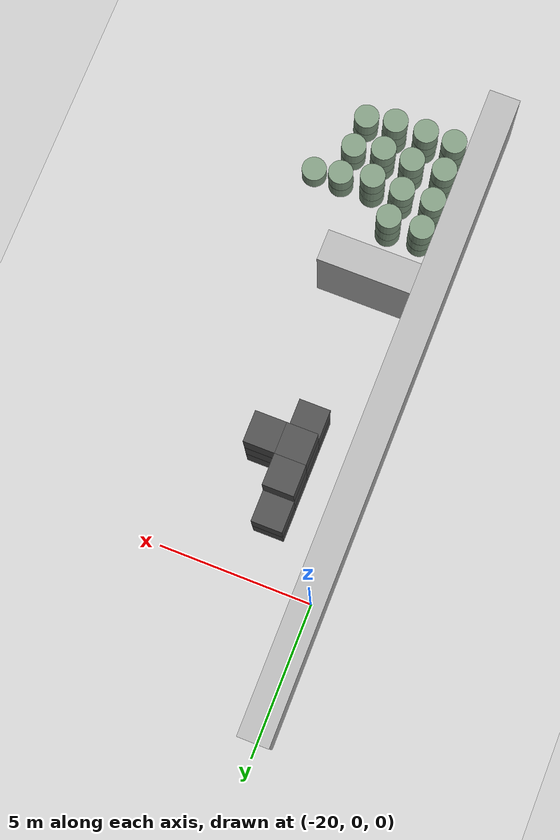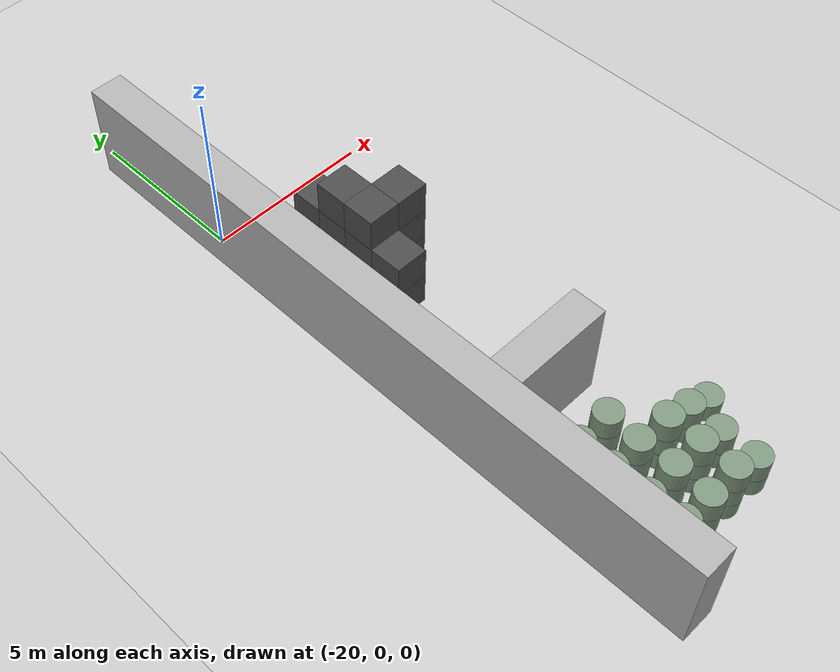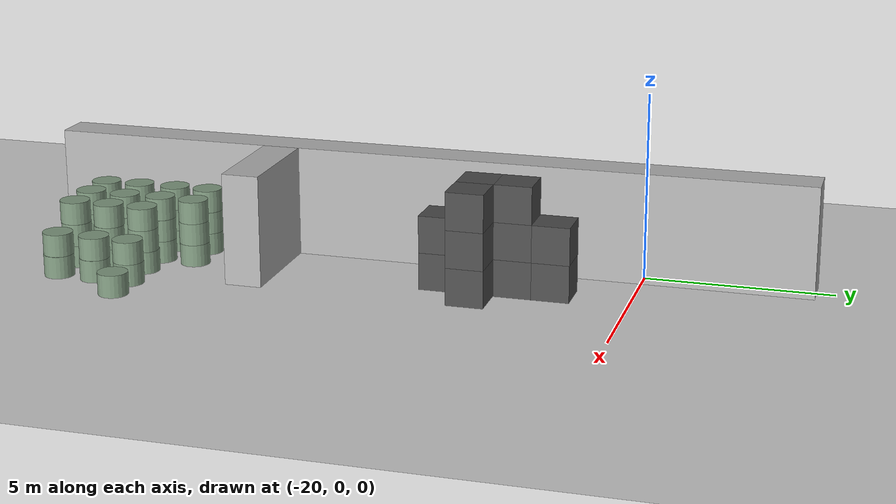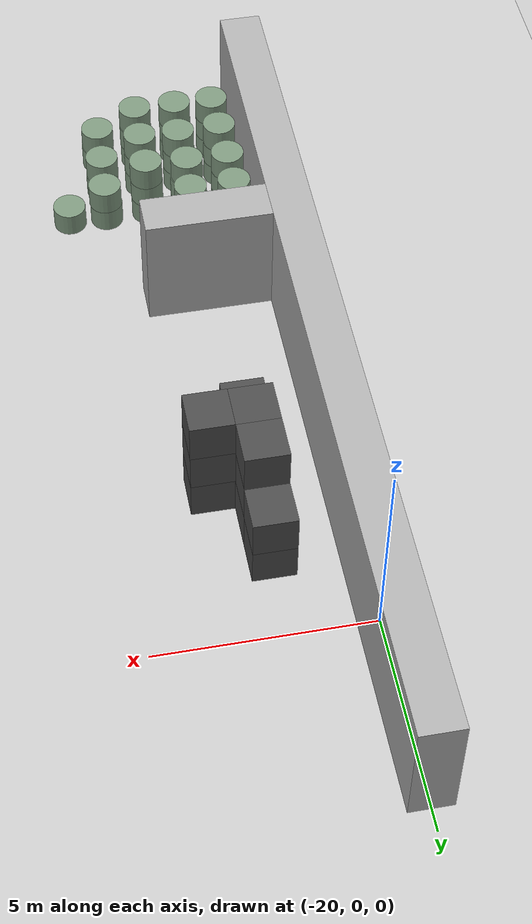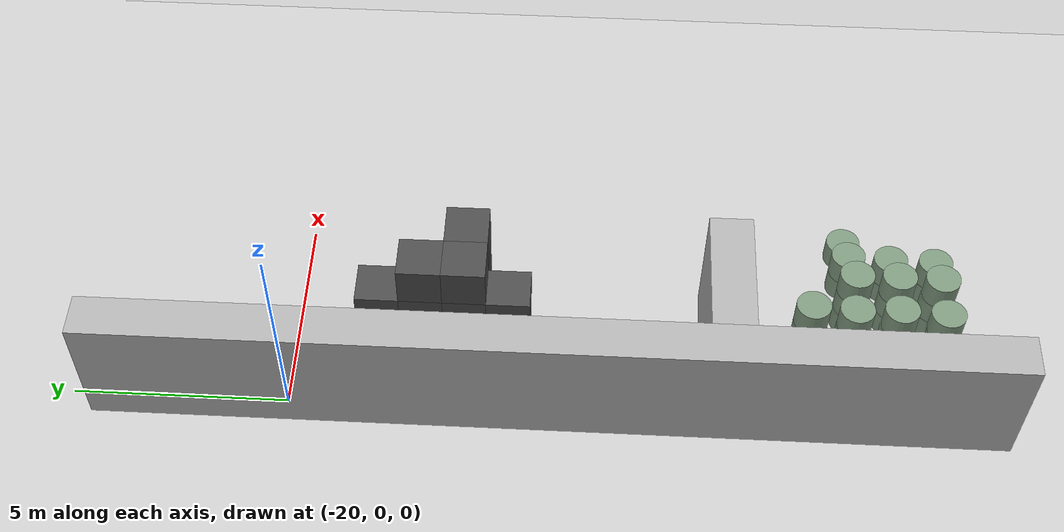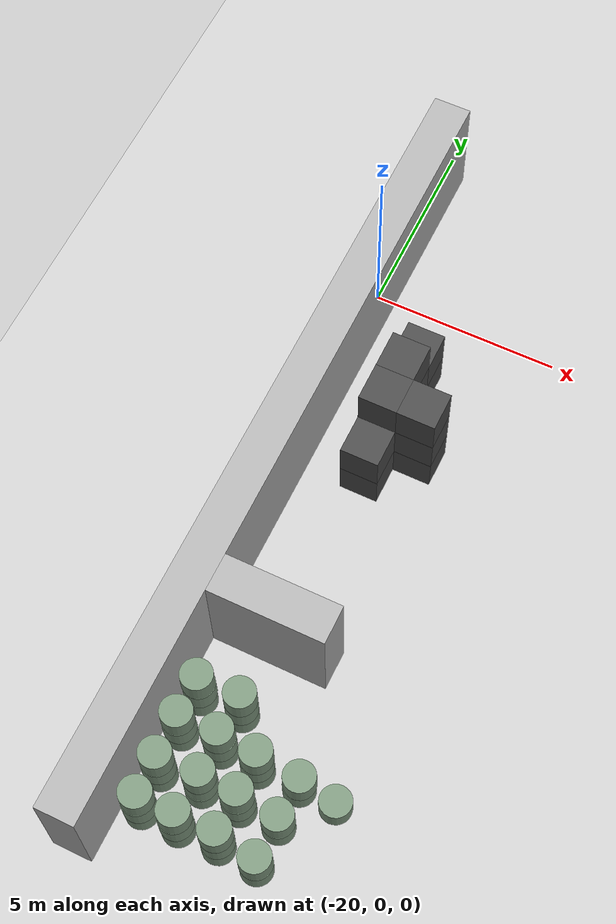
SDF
<sdf version="1.6">
 <world name="default">
  <include><uri>model://ground_plane</uri></include>
  <model name="wall_0">
   <pose>-20.0 -6.0 1.5 0 -0 0</pose>
   <static>True</static>
   <link name="link">
    <inertial>
     <mass>100</mass>
     <inertia>
      <ixx>0.166667</ixx>
      <ixy>0</ixy>
      <ixz>0</ixz>
      <iyy>0.166667</iyy>
      <iyz>0</iyz>
      <izz>0.166667</izz>
     </inertia>
    </inertial>
    <collision name="collision"><geometry><box><size>1.0 21.0 3.0</size></box></geometry></collision>
    <visual name="visual">
     <geometry><box><size>1.0 21.0 3.0</size></box></geometry>
     <material><ambient>0.7 0.7 0.7 1</ambient><diffuse>0.7 0.7 0.7 1</diffuse></material>
    </visual>
   </link>
  </model>
  <model name="wall_7">
   <pose>-18.0 -10.0 1.5 0 -0 0</pose>
   <static>True</static>
   <link name="link">
    <inertial>
     <mass>100</mass>
     <inertia>
      <ixx>0.166667</ixx>
      <ixy>0</ixy>
      <ixz>0</ixz>
      <iyy>0.166667</iyy>
      <iyz>0</iyz>
      <izz>0.166667</izz>
     </inertia>
    </inertial>
    <collision name="collision"><geometry><box><size>3.0 1.0 3.0</size></box></geometry></collision>
    <visual name="visual">
     <geometry><box><size>3.0 1.0 3.0</size></box></geometry>
     <material><ambient>0.7 0.7 0.7 1</ambient><diffuse>0.7 0.7 0.7 1</diffuse></material>
    </visual>
   </link>
  </model>
  <model name="unit_box_0">
   <pose>-18.0 -5.0 0.5 0 -0 0</pose>
   <static>True</static>
   <link name="link">
    <inertial>
     <mass>100</mass>
     <inertia>
      <ixx>0.166667</ixx>
      <ixy>0</ixy>
      <ixz>0</ixz>
      <iyy>0.166667</iyy>
      <iyz>0</iyz>
      <izz>0.166667</izz>
     </inertia>
    </inertial>
    <collision name="collision"><geometry><box><size>1.0 1.0 1.0</size></box></geometry></collision>
    <visual name="visual">
     <geometry><box><size>1.0 1.0 1.0</size></box></geometry>
     <material><ambient>0.3 0.3 0.3 1</ambient><diffuse>0.3 0.3 0.3 1</diffuse></material>
    </visual>
   </link>
  </model>
  <model name="unit_box_1">
   <pose>-18.0 -5.0 1.5 0 -0 0</pose>
   <static>True</static>
   <link name="link">
    <inertial>
     <mass>100</mass>
     <inertia>
      <ixx>0.166667</ixx>
      <ixy>0</ixy>
      <ixz>0</ixz>
      <iyy>0.166667</iyy>
      <iyz>0</iyz>
      <izz>0.166667</izz>
     </inertia>
    </inertial>
    <collision name="collision"><geometry><box><size>1.0 1.0 1.0</size></box></geometry></collision>
    <visual name="visual">
     <geometry><box><size>1.0 1.0 1.0</size></box></geometry>
     <material><ambient>0.3 0.3 0.3 1</ambient><diffuse>0.3 0.3 0.3 1</diffuse></material>
    </visual>
   </link>
  </model>
  <model name="unit_box_2">
   <pose>-18.0 -4.0 0.5 0 -0 0</pose>
   <static>True</static>
   <link name="link">
    <inertial>
     <mass>100</mass>
     <inertia>
      <ixx>0.166667</ixx>
      <ixy>0</ixy>
      <ixz>0</ixz>
      <iyy>0.166667</iyy>
      <iyz>0</iyz>
      <izz>0.166667</izz>
     </inertia>
    </inertial>
    <collision name="collision"><geometry><box><size>1.0 1.0 1.0</size></box></geometry></collision>
    <visual name="visual">
     <geometry><box><size>1.0 1.0 1.0</size></box></geometry>
     <material><ambient>0.3 0.3 0.3 1</ambient><diffuse>0.3 0.3 0.3 1</diffuse></material>
    </visual>
   </link>
  </model>
  <model name="unit_box_3">
   <pose>-18.0 -4.0 1.5 0 -0 0</pose>
   <static>True</static>
   <link name="link">
    <inertial>
     <mass>100</mass>
     <inertia>
      <ixx>0.166667</ixx>
      <ixy>0</ixy>
      <ixz>0</ixz>
      <iyy>0.166667</iyy>
      <iyz>0</iyz>
      <izz>0.166667</izz>
     </inertia>
    </inertial>
    <collision name="collision"><geometry><box><size>1.0 1.0 1.0</size></box></geometry></collision>
    <visual name="visual">
     <geometry><box><size>1.0 1.0 1.0</size></box></geometry>
     <material><ambient>0.3 0.3 0.3 1</ambient><diffuse>0.3 0.3 0.3 1</diffuse></material>
    </visual>
   </link>
  </model>
  <model name="unit_box_4">
   <pose>-18.0 -4.0 2.5 0 -0 0</pose>
   <static>True</static>
   <link name="link">
    <inertial>
     <mass>100</mass>
     <inertia>
      <ixx>0.166667</ixx>
      <ixy>0</ixy>
      <ixz>0</ixz>
      <iyy>0.166667</iyy>
      <iyz>0</iyz>
      <izz>0.166667</izz>
     </inertia>
    </inertial>
    <collision name="collision"><geometry><box><size>1.0 1.0 1.0</size></box></geometry></collision>
    <visual name="visual">
     <geometry><box><size>1.0 1.0 1.0</size></box></geometry>
     <material><ambient>0.3 0.3 0.3 1</ambient><diffuse>0.3 0.3 0.3 1</diffuse></material>
    </visual>
   </link>
  </model>
  <model name="unit_box_5">
   <pose>-18.0 -3.0 0.5 0 -0 0</pose>
   <static>True</static>
   <link name="link">
    <inertial>
     <mass>100</mass>
     <inertia>
      <ixx>0.166667</ixx>
      <ixy>0</ixy>
      <ixz>0</ixz>
      <iyy>0.166667</iyy>
      <iyz>0</iyz>
      <izz>0.166667</izz>
     </inertia>
    </inertial>
    <collision name="collision"><geometry><box><size>1.0 1.0 1.0</size></box></geometry></collision>
    <visual name="visual">
     <geometry><box><size>1.0 1.0 1.0</size></box></geometry>
     <material><ambient>0.3 0.3 0.3 1</ambient><diffuse>0.3 0.3 0.3 1</diffuse></material>
    </visual>
   </link>
  </model>
  <model name="unit_box_6">
   <pose>-18.0 -3.0 1.5 0 -0 0</pose>
   <static>True</static>
   <link name="link">
    <inertial>
     <mass>100</mass>
     <inertia>
      <ixx>0.166667</ixx>
      <ixy>0</ixy>
      <ixz>0</ixz>
      <iyy>0.166667</iyy>
      <iyz>0</iyz>
      <izz>0.166667</izz>
     </inertia>
    </inertial>
    <collision name="collision"><geometry><box><size>1.0 1.0 1.0</size></box></geometry></collision>
    <visual name="visual">
     <geometry><box><size>1.0 1.0 1.0</size></box></geometry>
     <material><ambient>0.3 0.3 0.3 1</ambient><diffuse>0.3 0.3 0.3 1</diffuse></material>
    </visual>
   </link>
  </model>
  <model name="unit_box_7">
   <pose>-18.0 -3.0 2.5 0 -0 0</pose>
   <static>True</static>
   <link name="link">
    <inertial>
     <mass>100</mass>
     <inertia>
      <ixx>0.166667</ixx>
      <ixy>0</ixy>
      <ixz>0</ixz>
      <iyy>0.166667</iyy>
      <iyz>0</iyz>
      <izz>0.166667</izz>
     </inertia>
    </inertial>
    <collision name="collision"><geometry><box><size>1.0 1.0 1.0</size></box></geometry></collision>
    <visual name="visual">
     <geometry><box><size>1.0 1.0 1.0</size></box></geometry>
     <material><ambient>0.3 0.3 0.3 1</ambient><diffuse>0.3 0.3 0.3 1</diffuse></material>
    </visual>
   </link>
  </model>
  <model name="unit_box_8">
   <pose>-18.0 -2.0 0.5 0 -0 0</pose>
   <static>True</static>
   <link name="link">
    <inertial>
     <mass>100</mass>
     <inertia>
      <ixx>0.166667</ixx>
      <ixy>0</ixy>
      <ixz>0</ixz>
      <iyy>0.166667</iyy>
      <iyz>0</iyz>
      <izz>0.166667</izz>
     </inertia>
    </inertial>
    <collision name="collision"><geometry><box><size>1.0 1.0 1.0</size></box></geometry></collision>
    <visual name="visual">
     <geometry><box><size>1.0 1.0 1.0</size></box></geometry>
     <material><ambient>0.3 0.3 0.3 1</ambient><diffuse>0.3 0.3 0.3 1</diffuse></material>
    </visual>
   </link>
  </model>
  <model name="unit_box_9">
   <pose>-18.0 -2.0 1.5 0 -0 0</pose>
   <static>True</static>
   <link name="link">
    <inertial>
     <mass>100</mass>
     <inertia>
      <ixx>0.166667</ixx>
      <ixy>0</ixy>
      <ixz>0</ixz>
      <iyy>0.166667</iyy>
      <iyz>0</iyz>
      <izz>0.166667</izz>
     </inertia>
    </inertial>
    <collision name="collision"><geometry><box><size>1.0 1.0 1.0</size></box></geometry></collision>
    <visual name="visual">
     <geometry><box><size>1.0 1.0 1.0</size></box></geometry>
     <material><ambient>0.3 0.3 0.3 1</ambient><diffuse>0.3 0.3 0.3 1</diffuse></material>
    </visual>
   </link>
  </model>
  <model name="unit_box_17">
   <pose>-17.0 -4.0 0.5 0 -0 0</pose>
   <static>True</static>
   <link name="link">
    <inertial>
     <mass>100</mass>
     <inertia>
      <ixx>0.166667</ixx>
      <ixy>0</ixy>
      <ixz>0</ixz>
      <iyy>0.166667</iyy>
      <iyz>0</iyz>
      <izz>0.166667</izz>
     </inertia>
    </inertial>
    <collision name="collision"><geometry><box><size>1.0 1.0 1.0</size></box></geometry></collision>
    <visual name="visual">
     <geometry><box><size>1.0 1.0 1.0</size></box></geometry>
     <material><ambient>0.3 0.3 0.3 1</ambient><diffuse>0.3 0.3 0.3 1</diffuse></material>
    </visual>
   </link>
  </model>
  <model name="unit_box_18">
   <pose>-17.0 -4.0 1.5 0 -0 0</pose>
   <static>True</static>
   <link name="link">
    <inertial>
     <mass>100</mass>
     <inertia>
      <ixx>0.166667</ixx>
      <ixy>0</ixy>
      <ixz>0</ixz>
      <iyy>0.166667</iyy>
      <iyz>0</iyz>
      <izz>0.166667</izz>
     </inertia>
    </inertial>
    <collision name="collision"><geometry><box><size>1.0 1.0 1.0</size></box></geometry></collision>
    <visual name="visual">
     <geometry><box><size>1.0 1.0 1.0</size></box></geometry>
     <material><ambient>0.3 0.3 0.3 1</ambient><diffuse>0.3 0.3 0.3 1</diffuse></material>
    </visual>
   </link>
  </model>
  <model name="unit_box_19">
   <pose>-17.0 -4.0 2.5 0 -0 0</pose>
   <static>True</static>
   <link name="link">
    <inertial>
     <mass>100</mass>
     <inertia>
      <ixx>0.166667</ixx>
      <ixy>0</ixy>
      <ixz>0</ixz>
      <iyy>0.166667</iyy>
      <iyz>0</iyz>
      <izz>0.166667</izz>
     </inertia>
    </inertial>
    <collision name="collision"><geometry><box><size>1.0 1.0 1.0</size></box></geometry></collision>
    <visual name="visual">
     <geometry><box><size>1.0 1.0 1.0</size></box></geometry>
     <material><ambient>0.3 0.3 0.3 1</ambient><diffuse>0.3 0.3 0.3 1</diffuse></material>
    </visual>
   </link>
  </model>
  <model name="unit_cylinder_0">
   <pose>-18.9976936055 -15.0173820122 0.3 0 -0 0</pose>
   <static>True</static>
   <link name="link">
    <inertial>
     <mass>100</mass>
     <inertia><ixx>0.145833</ixx><ixy>0</ixy><ixz>0</ixz><iyy>0.145833</iyy><iyz>0</iyz><izz>0.125</izz></inertia>
    </inertial>
    <collision name="collision">
     <geometry><cylinder><radius>0.4</radius><length>0.6</length></cylinder></geometry>
     <max_contacts>100</max_contacts>
    </collision>
    <visual name="visual">
     <geometry><cylinder><radius>0.4</radius><length>0.6</length></cylinder></geometry>
     <material><ambient>0.5 0.6 0.5 1</ambient><diffuse>0.5 0.6 0.5 1</diffuse></material>
    </visual>
   </link>
  </model>
  <model name="unit_cylinder_1">
   <pose>-18.9972618834 -15.027871023 0.9 0 -0 0</pose>
   <static>True</static>
   <link name="link">
    <inertial>
     <mass>100</mass>
     <inertia><ixx>0.145833</ixx><ixy>0</ixy><ixz>0</ixz><iyy>0.145833</iyy><iyz>0</iyz><izz>0.125</izz></inertia>
    </inertial>
    <collision name="collision">
     <geometry><cylinder><radius>0.4</radius><length>0.6</length></cylinder></geometry>
     <max_contacts>100</max_contacts>
    </collision>
    <visual name="visual">
     <geometry><cylinder><radius>0.4</radius><length>0.6</length></cylinder></geometry>
     <material><ambient>0.5 0.6 0.5 1</ambient><diffuse>0.5 0.6 0.5 1</diffuse></material>
    </visual>
   </link>
  </model>
  <model name="unit_cylinder_2">
   <pose>-18.9904668573 -15.0149929432 1.5 0 -0 0</pose>
   <static>True</static>
   <link name="link">
    <inertial>
     <mass>100</mass>
     <inertia><ixx>0.145833</ixx><ixy>0</ixy><ixz>0</ixz><iyy>0.145833</iyy><iyz>0</iyz><izz>0.125</izz></inertia>
    </inertial>
    <collision name="collision">
     <geometry><cylinder><radius>0.4</radius><length>0.6</length></cylinder></geometry>
     <max_contacts>100</max_contacts>
    </collision>
    <visual name="visual">
     <geometry><cylinder><radius>0.4</radius><length>0.6</length></cylinder></geometry>
     <material><ambient>0.5 0.6 0.5 1</ambient><diffuse>0.5 0.6 0.5 1</diffuse></material>
    </visual>
   </link>
  </model>
  <model name="unit_cylinder_3">
   <pose>-19.0211402646 -14.0417161583 0.3 0 -0 0</pose>
   <static>True</static>
   <link name="link">
    <inertial>
     <mass>100</mass>
     <inertia><ixx>0.145833</ixx><ixy>0</ixy><ixz>0</ixz><iyy>0.145833</iyy><iyz>0</iyz><izz>0.125</izz></inertia>
    </inertial>
    <collision name="collision">
     <geometry><cylinder><radius>0.4</radius><length>0.6</length></cylinder></geometry>
     <max_contacts>100</max_contacts>
    </collision>
    <visual name="visual">
     <geometry><cylinder><radius>0.4</radius><length>0.6</length></cylinder></geometry>
     <material><ambient>0.5 0.6 0.5 1</ambient><diffuse>0.5 0.6 0.5 1</diffuse></material>
    </visual>
   </link>
  </model>
  <model name="unit_cylinder_4">
   <pose>-19.0202628345 -14.0444929407 0.9 0 -0 0</pose>
   <static>True</static>
   <link name="link">
    <inertial>
     <mass>100</mass>
     <inertia><ixx>0.145833</ixx><ixy>0</ixy><ixz>0</ixz><iyy>0.145833</iyy><iyz>0</iyz><izz>0.125</izz></inertia>
    </inertial>
    <collision name="collision">
     <geometry><cylinder><radius>0.4</radius><length>0.6</length></cylinder></geometry>
     <max_contacts>100</max_contacts>
    </collision>
    <visual name="visual">
     <geometry><cylinder><radius>0.4</radius><length>0.6</length></cylinder></geometry>
     <material><ambient>0.5 0.6 0.5 1</ambient><diffuse>0.5 0.6 0.5 1</diffuse></material>
    </visual>
   </link>
  </model>
  <model name="unit_cylinder_5">
   <pose>-19.0223204834 -14.0344941142 1.5 0 -0 0</pose>
   <static>True</static>
   <link name="link">
    <inertial>
     <mass>100</mass>
     <inertia><ixx>0.145833</ixx><ixy>0</ixy><ixz>0</ixz><iyy>0.145833</iyy><iyz>0</iyz><izz>0.125</izz></inertia>
    </inertial>
    <collision name="collision">
     <geometry><cylinder><radius>0.4</radius><length>0.6</length></cylinder></geometry>
     <max_contacts>100</max_contacts>
    </collision>
    <visual name="visual">
     <geometry><cylinder><radius>0.4</radius><length>0.6</length></cylinder></geometry>
     <material><ambient>0.5 0.6 0.5 1</ambient><diffuse>0.5 0.6 0.5 1</diffuse></material>
    </visual>
   </link>
  </model>
  <model name="unit_cylinder_6">
   <pose>-19.0405860404 -12.9740119748 0.3 0 -0 0</pose>
   <static>True</static>
   <link name="link">
    <inertial>
     <mass>100</mass>
     <inertia><ixx>0.145833</ixx><ixy>0</ixy><ixz>0</ixz><iyy>0.145833</iyy><iyz>0</iyz><izz>0.125</izz></inertia>
    </inertial>
    <collision name="collision">
     <geometry><cylinder><radius>0.4</radius><length>0.6</length></cylinder></geometry>
     <max_contacts>100</max_contacts>
    </collision>
    <visual name="visual">
     <geometry><cylinder><radius>0.4</radius><length>0.6</length></cylinder></geometry>
     <material><ambient>0.5 0.6 0.5 1</ambient><diffuse>0.5 0.6 0.5 1</diffuse></material>
    </visual>
   </link>
  </model>
  <model name="unit_cylinder_7">
   <pose>-19.0390184208 -12.9880925137 0.9 0 -0 0</pose>
   <static>True</static>
   <link name="link">
    <inertial>
     <mass>100</mass>
     <inertia><ixx>0.145833</ixx><ixy>0</ixy><ixz>0</ixz><iyy>0.145833</iyy><iyz>0</iyz><izz>0.125</izz></inertia>
    </inertial>
    <collision name="collision">
     <geometry><cylinder><radius>0.4</radius><length>0.6</length></cylinder></geometry>
     <max_contacts>100</max_contacts>
    </collision>
    <visual name="visual">
     <geometry><cylinder><radius>0.4</radius><length>0.6</length></cylinder></geometry>
     <material><ambient>0.5 0.6 0.5 1</ambient><diffuse>0.5 0.6 0.5 1</diffuse></material>
    </visual>
   </link>
  </model>
  <model name="unit_cylinder_8">
   <pose>-19.0408702271 -12.9782442455 1.5 0 -0 0</pose>
   <static>True</static>
   <link name="link">
    <inertial>
     <mass>100</mass>
     <inertia><ixx>0.145833</ixx><ixy>0</ixy><ixz>0</ixz><iyy>0.145833</iyy><iyz>0</iyz><izz>0.125</izz></inertia>
    </inertial>
    <collision name="collision">
     <geometry><cylinder><radius>0.4</radius><length>0.6</length></cylinder></geometry>
     <max_contacts>100</max_contacts>
    </collision>
    <visual name="visual">
     <geometry><cylinder><radius>0.4</radius><length>0.6</length></cylinder></geometry>
     <material><ambient>0.5 0.6 0.5 1</ambient><diffuse>0.5 0.6 0.5 1</diffuse></material>
    </visual>
   </link>
  </model>
  <model name="unit_cylinder_9">
   <pose>-19.0255646272 -12.0182648448 0.3 0 -0 0</pose>
   <static>True</static>
   <link name="link">
    <inertial>
     <mass>100</mass>
     <inertia><ixx>0.145833</ixx><ixy>0</ixy><ixz>0</ixz><iyy>0.145833</iyy><iyz>0</iyz><izz>0.125</izz></inertia>
    </inertial>
    <collision name="collision">
     <geometry><cylinder><radius>0.4</radius><length>0.6</length></cylinder></geometry>
     <max_contacts>100</max_contacts>
    </collision>
    <visual name="visual">
     <geometry><cylinder><radius>0.4</radius><length>0.6</length></cylinder></geometry>
     <material><ambient>0.5 0.6 0.5 1</ambient><diffuse>0.5 0.6 0.5 1</diffuse></material>
    </visual>
   </link>
  </model>
  <model name="unit_cylinder_10">
   <pose>-19.016616472 -12.0086940915 0.9 0 -0 0</pose>
   <static>True</static>
   <link name="link">
    <inertial>
     <mass>100</mass>
     <inertia><ixx>0.145833</ixx><ixy>0</ixy><ixz>0</ixz><iyy>0.145833</iyy><iyz>0</iyz><izz>0.125</izz></inertia>
    </inertial>
    <collision name="collision">
     <geometry><cylinder><radius>0.4</radius><length>0.6</length></cylinder></geometry>
     <max_contacts>100</max_contacts>
    </collision>
    <visual name="visual">
     <geometry><cylinder><radius>0.4</radius><length>0.6</length></cylinder></geometry>
     <material><ambient>0.5 0.6 0.5 1</ambient><diffuse>0.5 0.6 0.5 1</diffuse></material>
    </visual>
   </link>
  </model>
  <model name="unit_cylinder_11">
   <pose>-19.0320467182 -12.0079333061 1.5 0 -0 0</pose>
   <static>True</static>
   <link name="link">
    <inertial>
     <mass>100</mass>
     <inertia><ixx>0.145833</ixx><ixy>0</ixy><ixz>0</ixz><iyy>0.145833</iyy><iyz>0</iyz><izz>0.125</izz></inertia>
    </inertial>
    <collision name="collision">
     <geometry><cylinder><radius>0.4</radius><length>0.6</length></cylinder></geometry>
     <max_contacts>100</max_contacts>
    </collision>
    <visual name="visual">
     <geometry><cylinder><radius>0.4</radius><length>0.6</length></cylinder></geometry>
     <material><ambient>0.5 0.6 0.5 1</ambient><diffuse>0.5 0.6 0.5 1</diffuse></material>
    </visual>
   </link>
  </model>
  <model name="unit_cylinder_12">
   <pose>-18.0420736906 -15.0203678666 0.3 0 -0 0</pose>
   <static>True</static>
   <link name="link">
    <inertial>
     <mass>100</mass>
     <inertia><ixx>0.145833</ixx><ixy>0</ixy><ixz>0</ixz><iyy>0.145833</iyy><iyz>0</iyz><izz>0.125</izz></inertia>
    </inertial>
    <collision name="collision">
     <geometry><cylinder><radius>0.4</radius><length>0.6</length></cylinder></geometry>
     <max_contacts>100</max_contacts>
    </collision>
    <visual name="visual">
     <geometry><cylinder><radius>0.4</radius><length>0.6</length></cylinder></geometry>
     <material><ambient>0.5 0.6 0.5 1</ambient><diffuse>0.5 0.6 0.5 1</diffuse></material>
    </visual>
   </link>
  </model>
  <model name="unit_cylinder_13">
   <pose>-18.0505694957 -15.0283172559 0.9 0 -0 0</pose>
   <static>True</static>
   <link name="link">
    <inertial>
     <mass>100</mass>
     <inertia><ixx>0.145833</ixx><ixy>0</ixy><ixz>0</ixz><iyy>0.145833</iyy><iyz>0</iyz><izz>0.125</izz></inertia>
    </inertial>
    <collision name="collision">
     <geometry><cylinder><radius>0.4</radius><length>0.6</length></cylinder></geometry>
     <max_contacts>100</max_contacts>
    </collision>
    <visual name="visual">
     <geometry><cylinder><radius>0.4</radius><length>0.6</length></cylinder></geometry>
     <material><ambient>0.5 0.6 0.5 1</ambient><diffuse>0.5 0.6 0.5 1</diffuse></material>
    </visual>
   </link>
  </model>
  <model name="unit_cylinder_14">
   <pose>-18.0397778592 -15.0171804813 1.5 0 -0 0</pose>
   <static>True</static>
   <link name="link">
    <inertial>
     <mass>100</mass>
     <inertia><ixx>0.145833</ixx><ixy>0</ixy><ixz>0</ixz><iyy>0.145833</iyy><iyz>0</iyz><izz>0.125</izz></inertia>
    </inertial>
    <collision name="collision">
     <geometry><cylinder><radius>0.4</radius><length>0.6</length></cylinder></geometry>
     <max_contacts>100</max_contacts>
    </collision>
    <visual name="visual">
     <geometry><cylinder><radius>0.4</radius><length>0.6</length></cylinder></geometry>
     <material><ambient>0.5 0.6 0.5 1</ambient><diffuse>0.5 0.6 0.5 1</diffuse></material>
    </visual>
   </link>
  </model>
  <model name="unit_cylinder_15">
   <pose>-17.9716567886 -13.9818345061 0.3 0 -0 0</pose>
   <static>True</static>
   <link name="link">
    <inertial>
     <mass>100</mass>
     <inertia><ixx>0.145833</ixx><ixy>0</ixy><ixz>0</ixz><iyy>0.145833</iyy><iyz>0</iyz><izz>0.125</izz></inertia>
    </inertial>
    <collision name="collision">
     <geometry><cylinder><radius>0.4</radius><length>0.6</length></cylinder></geometry>
     <max_contacts>100</max_contacts>
    </collision>
    <visual name="visual">
     <geometry><cylinder><radius>0.4</radius><length>0.6</length></cylinder></geometry>
     <material><ambient>0.5 0.6 0.5 1</ambient><diffuse>0.5 0.6 0.5 1</diffuse></material>
    </visual>
   </link>
  </model>
  <model name="unit_cylinder_16">
   <pose>-17.9717509145 -13.9671241732 0.9 0 -0 0</pose>
   <static>True</static>
   <link name="link">
    <inertial>
     <mass>100</mass>
     <inertia><ixx>0.145833</ixx><ixy>0</ixy><ixz>0</ixz><iyy>0.145833</iyy><iyz>0</iyz><izz>0.125</izz></inertia>
    </inertial>
    <collision name="collision">
     <geometry><cylinder><radius>0.4</radius><length>0.6</length></cylinder></geometry>
     <max_contacts>100</max_contacts>
    </collision>
    <visual name="visual">
     <geometry><cylinder><radius>0.4</radius><length>0.6</length></cylinder></geometry>
     <material><ambient>0.5 0.6 0.5 1</ambient><diffuse>0.5 0.6 0.5 1</diffuse></material>
    </visual>
   </link>
  </model>
  <model name="unit_cylinder_17">
   <pose>-17.9676752597 -13.9786046678 1.5 0 -0 0</pose>
   <static>True</static>
   <link name="link">
    <inertial>
     <mass>100</mass>
     <inertia><ixx>0.145833</ixx><ixy>0</ixy><ixz>0</ixz><iyy>0.145833</iyy><iyz>0</iyz><izz>0.125</izz></inertia>
    </inertial>
    <collision name="collision">
     <geometry><cylinder><radius>0.4</radius><length>0.6</length></cylinder></geometry>
     <max_contacts>100</max_contacts>
    </collision>
    <visual name="visual">
     <geometry><cylinder><radius>0.4</radius><length>0.6</length></cylinder></geometry>
     <material><ambient>0.5 0.6 0.5 1</ambient><diffuse>0.5 0.6 0.5 1</diffuse></material>
    </visual>
   </link>
  </model>
  <model name="unit_cylinder_18">
   <pose>-17.9995596628 -12.9582796081 0.3 0 -0 0</pose>
   <static>True</static>
   <link name="link">
    <inertial>
     <mass>100</mass>
     <inertia><ixx>0.145833</ixx><ixy>0</ixy><ixz>0</ixz><iyy>0.145833</iyy><iyz>0</iyz><izz>0.125</izz></inertia>
    </inertial>
    <collision name="collision">
     <geometry><cylinder><radius>0.4</radius><length>0.6</length></cylinder></geometry>
     <max_contacts>100</max_contacts>
    </collision>
    <visual name="visual">
     <geometry><cylinder><radius>0.4</radius><length>0.6</length></cylinder></geometry>
     <material><ambient>0.5 0.6 0.5 1</ambient><diffuse>0.5 0.6 0.5 1</diffuse></material>
    </visual>
   </link>
  </model>
  <model name="unit_cylinder_19">
   <pose>-18.0006478144 -12.9562768248 0.9 0 -0 0</pose>
   <static>True</static>
   <link name="link">
    <inertial>
     <mass>100</mass>
     <inertia><ixx>0.145833</ixx><ixy>0</ixy><ixz>0</ixz><iyy>0.145833</iyy><iyz>0</iyz><izz>0.125</izz></inertia>
    </inertial>
    <collision name="collision">
     <geometry><cylinder><radius>0.4</radius><length>0.6</length></cylinder></geometry>
     <max_contacts>100</max_contacts>
    </collision>
    <visual name="visual">
     <geometry><cylinder><radius>0.4</radius><length>0.6</length></cylinder></geometry>
     <material><ambient>0.5 0.6 0.5 1</ambient><diffuse>0.5 0.6 0.5 1</diffuse></material>
    </visual>
   </link>
  </model>
  <model name="unit_cylinder_20">
   <pose>-18.0174307461 -12.95701678 1.5 0 -0 0</pose>
   <static>True</static>
   <link name="link">
    <inertial>
     <mass>100</mass>
     <inertia><ixx>0.145833</ixx><ixy>0</ixy><ixz>0</ixz><iyy>0.145833</iyy><iyz>0</iyz><izz>0.125</izz></inertia>
    </inertial>
    <collision name="collision">
     <geometry><cylinder><radius>0.4</radius><length>0.6</length></cylinder></geometry>
     <max_contacts>100</max_contacts>
    </collision>
    <visual name="visual">
     <geometry><cylinder><radius>0.4</radius><length>0.6</length></cylinder></geometry>
     <material><ambient>0.5 0.6 0.5 1</ambient><diffuse>0.5 0.6 0.5 1</diffuse></material>
    </visual>
   </link>
  </model>
  <model name="unit_cylinder_21">
   <pose>-17.9567549455 -11.9640111714 0.3 0 -0 0</pose>
   <static>True</static>
   <link name="link">
    <inertial>
     <mass>100</mass>
     <inertia><ixx>0.145833</ixx><ixy>0</ixy><ixz>0</ixz><iyy>0.145833</iyy><iyz>0</iyz><izz>0.125</izz></inertia>
    </inertial>
    <collision name="collision">
     <geometry><cylinder><radius>0.4</radius><length>0.6</length></cylinder></geometry>
     <max_contacts>100</max_contacts>
    </collision>
    <visual name="visual">
     <geometry><cylinder><radius>0.4</radius><length>0.6</length></cylinder></geometry>
     <material><ambient>0.5 0.6 0.5 1</ambient><diffuse>0.5 0.6 0.5 1</diffuse></material>
    </visual>
   </link>
  </model>
  <model name="unit_cylinder_22">
   <pose>-17.9493603647 -11.9685357483 0.9 0 -0 0</pose>
   <static>True</static>
   <link name="link">
    <inertial>
     <mass>100</mass>
     <inertia><ixx>0.145833</ixx><ixy>0</ixy><ixz>0</ixz><iyy>0.145833</iyy><iyz>0</iyz><izz>0.125</izz></inertia>
    </inertial>
    <collision name="collision">
     <geometry><cylinder><radius>0.4</radius><length>0.6</length></cylinder></geometry>
     <max_contacts>100</max_contacts>
    </collision>
    <visual name="visual">
     <geometry><cylinder><radius>0.4</radius><length>0.6</length></cylinder></geometry>
     <material><ambient>0.5 0.6 0.5 1</ambient><diffuse>0.5 0.6 0.5 1</diffuse></material>
    </visual>
   </link>
  </model>
  <model name="unit_cylinder_23">
   <pose>-17.9479986522 -11.9689556701 1.5 0 -0 0</pose>
   <static>True</static>
   <link name="link">
    <inertial>
     <mass>100</mass>
     <inertia><ixx>0.145833</ixx><ixy>0</ixy><ixz>0</ixz><iyy>0.145833</iyy><iyz>0</iyz><izz>0.125</izz></inertia>
    </inertial>
    <collision name="collision">
     <geometry><cylinder><radius>0.4</radius><length>0.6</length></cylinder></geometry>
     <max_contacts>100</max_contacts>
    </collision>
    <visual name="visual">
     <geometry><cylinder><radius>0.4</radius><length>0.6</length></cylinder></geometry>
     <material><ambient>0.5 0.6 0.5 1</ambient><diffuse>0.5 0.6 0.5 1</diffuse></material>
    </visual>
   </link>
  </model>
  <model name="unit_cylinder_24">
   <pose>-17.0287107313 -14.9897627843 0.3 0 -0 0</pose>
   <static>True</static>
   <link name="link">
    <inertial>
     <mass>100</mass>
     <inertia><ixx>0.145833</ixx><ixy>0</ixy><ixz>0</ixz><iyy>0.145833</iyy><iyz>0</iyz><izz>0.125</izz></inertia>
    </inertial>
    <collision name="collision">
     <geometry><cylinder><radius>0.4</radius><length>0.6</length></cylinder></geometry>
     <max_contacts>100</max_contacts>
    </collision>
    <visual name="visual">
     <geometry><cylinder><radius>0.4</radius><length>0.6</length></cylinder></geometry>
     <material><ambient>0.5 0.6 0.5 1</ambient><diffuse>0.5 0.6 0.5 1</diffuse></material>
    </visual>
   </link>
  </model>
  <model name="unit_cylinder_25">
   <pose>-17.0208859403 -14.9844233322 0.9 0 -0 0</pose>
   <static>True</static>
   <link name="link">
    <inertial>
     <mass>100</mass>
     <inertia><ixx>0.145833</ixx><ixy>0</ixy><ixz>0</ixz><iyy>0.145833</iyy><iyz>0</iyz><izz>0.125</izz></inertia>
    </inertial>
    <collision name="collision">
     <geometry><cylinder><radius>0.4</radius><length>0.6</length></cylinder></geometry>
     <max_contacts>100</max_contacts>
    </collision>
    <visual name="visual">
     <geometry><cylinder><radius>0.4</radius><length>0.6</length></cylinder></geometry>
     <material><ambient>0.5 0.6 0.5 1</ambient><diffuse>0.5 0.6 0.5 1</diffuse></material>
    </visual>
   </link>
  </model>
  <model name="unit_cylinder_26">
   <pose>-17.0241743726 -14.9971636506 1.5 0 -0 0</pose>
   <static>True</static>
   <link name="link">
    <inertial>
     <mass>100</mass>
     <inertia><ixx>0.145833</ixx><ixy>0</ixy><ixz>0</ixz><iyy>0.145833</iyy><iyz>0</iyz><izz>0.125</izz></inertia>
    </inertial>
    <collision name="collision">
     <geometry><cylinder><radius>0.4</radius><length>0.6</length></cylinder></geometry>
     <max_contacts>100</max_contacts>
    </collision>
    <visual name="visual">
     <geometry><cylinder><radius>0.4</radius><length>0.6</length></cylinder></geometry>
     <material><ambient>0.5 0.6 0.5 1</ambient><diffuse>0.5 0.6 0.5 1</diffuse></material>
    </visual>
   </link>
  </model>
  <model name="unit_cylinder_27">
   <pose>-16.9901523854 -14.0072806331 0.3 0 -0 0</pose>
   <static>True</static>
   <link name="link">
    <inertial>
     <mass>100</mass>
     <inertia><ixx>0.145833</ixx><ixy>0</ixy><ixz>0</ixz><iyy>0.145833</iyy><iyz>0</iyz><izz>0.125</izz></inertia>
    </inertial>
    <collision name="collision">
     <geometry><cylinder><radius>0.4</radius><length>0.6</length></cylinder></geometry>
     <max_contacts>100</max_contacts>
    </collision>
    <visual name="visual">
     <geometry><cylinder><radius>0.4</radius><length>0.6</length></cylinder></geometry>
     <material><ambient>0.5 0.6 0.5 1</ambient><diffuse>0.5 0.6 0.5 1</diffuse></material>
    </visual>
   </link>
  </model>
  <model name="unit_cylinder_28">
   <pose>-16.9943947558 -14.0166843549 0.9 0 -0 0</pose>
   <static>True</static>
   <link name="link">
    <inertial>
     <mass>100</mass>
     <inertia><ixx>0.145833</ixx><ixy>0</ixy><ixz>0</ixz><iyy>0.145833</iyy><iyz>0</iyz><izz>0.125</izz></inertia>
    </inertial>
    <collision name="collision">
     <geometry><cylinder><radius>0.4</radius><length>0.6</length></cylinder></geometry>
     <max_contacts>100</max_contacts>
    </collision>
    <visual name="visual">
     <geometry><cylinder><radius>0.4</radius><length>0.6</length></cylinder></geometry>
     <material><ambient>0.5 0.6 0.5 1</ambient><diffuse>0.5 0.6 0.5 1</diffuse></material>
    </visual>
   </link>
  </model>
  <model name="unit_cylinder_29">
   <pose>-17.0014851695 -14.0039637113 1.5 0 -0 0</pose>
   <static>True</static>
   <link name="link">
    <inertial>
     <mass>100</mass>
     <inertia><ixx>0.145833</ixx><ixy>0</ixy><ixz>0</ixz><iyy>0.145833</iyy><iyz>0</iyz><izz>0.125</izz></inertia>
    </inertial>
    <collision name="collision">
     <geometry><cylinder><radius>0.4</radius><length>0.6</length></cylinder></geometry>
     <max_contacts>100</max_contacts>
    </collision>
    <visual name="visual">
     <geometry><cylinder><radius>0.4</radius><length>0.6</length></cylinder></geometry>
     <material><ambient>0.5 0.6 0.5 1</ambient><diffuse>0.5 0.6 0.5 1</diffuse></material>
    </visual>
   </link>
  </model>
  <model name="unit_cylinder_30">
   <pose>-17.0151063259 -13.0168398191 0.3 0 -0 0</pose>
   <static>True</static>
   <link name="link">
    <inertial>
     <mass>100</mass>
     <inertia><ixx>0.145833</ixx><ixy>0</ixy><ixz>0</ixz><iyy>0.145833</iyy><iyz>0</iyz><izz>0.125</izz></inertia>
    </inertial>
    <collision name="collision">
     <geometry><cylinder><radius>0.4</radius><length>0.6</length></cylinder></geometry>
     <max_contacts>100</max_contacts>
    </collision>
    <visual name="visual">
     <geometry><cylinder><radius>0.4</radius><length>0.6</length></cylinder></geometry>
     <material><ambient>0.5 0.6 0.5 1</ambient><diffuse>0.5 0.6 0.5 1</diffuse></material>
    </visual>
   </link>
  </model>
  <model name="unit_cylinder_31">
   <pose>-17.0099219804 -13.0300482675 0.9 0 -0 0</pose>
   <static>True</static>
   <link name="link">
    <inertial>
     <mass>100</mass>
     <inertia><ixx>0.145833</ixx><ixy>0</ixy><ixz>0</ixz><iyy>0.145833</iyy><iyz>0</iyz><izz>0.125</izz></inertia>
    </inertial>
    <collision name="collision">
     <geometry><cylinder><radius>0.4</radius><length>0.6</length></cylinder></geometry>
     <max_contacts>100</max_contacts>
    </collision>
    <visual name="visual">
     <geometry><cylinder><radius>0.4</radius><length>0.6</length></cylinder></geometry>
     <material><ambient>0.5 0.6 0.5 1</ambient><diffuse>0.5 0.6 0.5 1</diffuse></material>
    </visual>
   </link>
  </model>
  <model name="unit_cylinder_32">
   <pose>-17.0030619116 -13.0265679111 1.5 0 -0 0</pose>
   <static>True</static>
   <link name="link">
    <inertial>
     <mass>100</mass>
     <inertia><ixx>0.145833</ixx><ixy>0</ixy><ixz>0</ixz><iyy>0.145833</iyy><iyz>0</iyz><izz>0.125</izz></inertia>
    </inertial>
    <collision name="collision">
     <geometry><cylinder><radius>0.4</radius><length>0.6</length></cylinder></geometry>
     <max_contacts>100</max_contacts>
    </collision>
    <visual name="visual">
     <geometry><cylinder><radius>0.4</radius><length>0.6</length></cylinder></geometry>
     <material><ambient>0.5 0.6 0.5 1</ambient><diffuse>0.5 0.6 0.5 1</diffuse></material>
    </visual>
   </link>
  </model>
  <model name="unit_cylinder_33">
   <pose>-16.0339618049 -15.0422708428 0.3 0 -0 0</pose>
   <static>True</static>
   <link name="link">
    <inertial>
     <mass>100</mass>
     <inertia><ixx>0.145833</ixx><ixy>0</ixy><ixz>0</ixz><iyy>0.145833</iyy><iyz>0</iyz><izz>0.125</izz></inertia>
    </inertial>
    <collision name="collision">
     <geometry><cylinder><radius>0.4</radius><length>0.6</length></cylinder></geometry>
     <max_contacts>100</max_contacts>
    </collision>
    <visual name="visual">
     <geometry><cylinder><radius>0.4</radius><length>0.6</length></cylinder></geometry>
     <material><ambient>0.5 0.6 0.5 1</ambient><diffuse>0.5 0.6 0.5 1</diffuse></material>
    </visual>
   </link>
  </model>
  <model name="unit_cylinder_34">
   <pose>-16.0459914303 -15.0409269989 0.9 0 -0 0</pose>
   <static>True</static>
   <link name="link">
    <inertial>
     <mass>100</mass>
     <inertia><ixx>0.145833</ixx><ixy>0</ixy><ixz>0</ixz><iyy>0.145833</iyy><iyz>0</iyz><izz>0.125</izz></inertia>
    </inertial>
    <collision name="collision">
     <geometry><cylinder><radius>0.4</radius><length>0.6</length></cylinder></geometry>
     <max_contacts>100</max_contacts>
    </collision>
    <visual name="visual">
     <geometry><cylinder><radius>0.4</radius><length>0.6</length></cylinder></geometry>
     <material><ambient>0.5 0.6 0.5 1</ambient><diffuse>0.5 0.6 0.5 1</diffuse></material>
    </visual>
   </link>
  </model>
  <model name="unit_cylinder_35">
   <pose>-16.004762642 -13.9875923669 0.3 0 -0 0</pose>
   <static>True</static>
   <link name="link">
    <inertial>
     <mass>100</mass>
     <inertia><ixx>0.145833</ixx><ixy>0</ixy><ixz>0</ixz><iyy>0.145833</iyy><iyz>0</iyz><izz>0.125</izz></inertia>
    </inertial>
    <collision name="collision">
     <geometry><cylinder><radius>0.4</radius><length>0.6</length></cylinder></geometry>
     <max_contacts>100</max_contacts>
    </collision>
    <visual name="visual">
     <geometry><cylinder><radius>0.4</radius><length>0.6</length></cylinder></geometry>
     <material><ambient>0.5 0.6 0.5 1</ambient><diffuse>0.5 0.6 0.5 1</diffuse></material>
    </visual>
   </link>
  </model>
  <model name="unit_cylinder_36">
   <pose>-16.0141002171 -13.981602989 0.9 0 -0 0</pose>
   <static>True</static>
   <link name="link">
    <inertial>
     <mass>100</mass>
     <inertia><ixx>0.145833</ixx><ixy>0</ixy><ixz>0</ixz><iyy>0.145833</iyy><iyz>0</iyz><izz>0.125</izz></inertia>
    </inertial>
    <collision name="collision">
     <geometry><cylinder><radius>0.4</radius><length>0.6</length></cylinder></geometry>
     <max_contacts>100</max_contacts>
    </collision>
    <visual name="visual">
     <geometry><cylinder><radius>0.4</radius><length>0.6</length></cylinder></geometry>
     <material><ambient>0.5 0.6 0.5 1</ambient><diffuse>0.5 0.6 0.5 1</diffuse></material>
    </visual>
   </link>
  </model>
  <model name="unit_cylinder_37">
   <pose>-15.9650536946 -12.9890245827 0.3 0 -0 0</pose>
   <static>True</static>
   <link name="link">
    <inertial>
     <mass>100</mass>
     <inertia><ixx>0.145833</ixx><ixy>0</ixy><ixz>0</ixz><iyy>0.145833</iyy><iyz>0</iyz><izz>0.125</izz></inertia>
    </inertial>
    <collision name="collision">
     <geometry><cylinder><radius>0.4</radius><length>0.6</length></cylinder></geometry>
     <max_contacts>100</max_contacts>
    </collision>
    <visual name="visual">
     <geometry><cylinder><radius>0.4</radius><length>0.6</length></cylinder></geometry>
     <material><ambient>0.5 0.6 0.5 1</ambient><diffuse>0.5 0.6 0.5 1</diffuse></material>
    </visual>
   </link>
  </model>
  <model name="unit_cylinder_38">
   <pose>-15.9502029504 -12.9850276051 0.9 0 -0 0</pose>
   <static>True</static>
   <link name="link">
    <inertial>
     <mass>100</mass>
     <inertia><ixx>0.145833</ixx><ixy>0</ixy><ixz>0</ixz><iyy>0.145833</iyy><iyz>0</iyz><izz>0.125</izz></inertia>
    </inertial>
    <collision name="collision">
     <geometry><cylinder><radius>0.4</radius><length>0.6</length></cylinder></geometry>
     <max_contacts>100</max_contacts>
    </collision>
    <visual name="visual">
     <geometry><cylinder><radius>0.4</radius><length>0.6</length></cylinder></geometry>
     <material><ambient>0.5 0.6 0.5 1</ambient><diffuse>0.5 0.6 0.5 1</diffuse></material>
    </visual>
   </link>
  </model>
  <model name="unit_cylinder_41">
   <pose>-15.0363667968 -12.9998924058 0.3 0 -0 0</pose>
   <static>True</static>
   <link name="link">
    <inertial>
     <mass>100</mass>
     <inertia><ixx>0.145833</ixx><ixy>0</ixy><ixz>0</ixz><iyy>0.145833</iyy><iyz>0</iyz><izz>0.125</izz></inertia>
    </inertial>
    <collision name="collision">
     <geometry><cylinder><radius>0.4</radius><length>0.6</length></cylinder></geometry>
     <max_contacts>100</max_contacts>
    </collision>
    <visual name="visual">
     <geometry><cylinder><radius>0.4</radius><length>0.6</length></cylinder></geometry>
     <material><ambient>0.5 0.6 0.5 1</ambient><diffuse>0.5 0.6 0.5 1</diffuse></material>
    </visual>
   </link>
  </model>
 </world>
</sdf>
